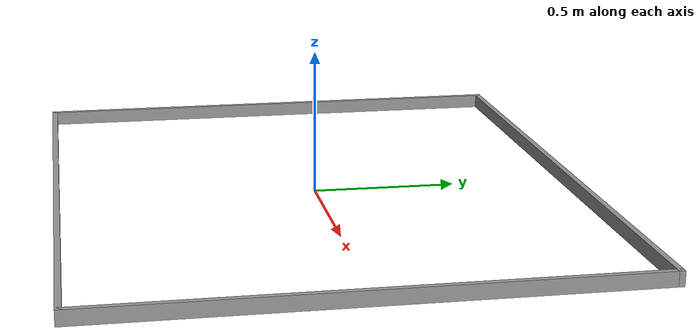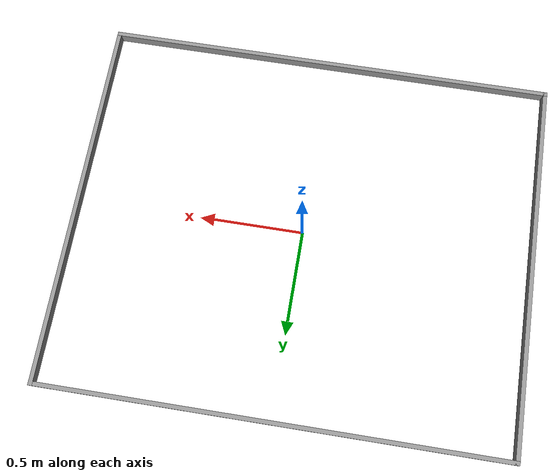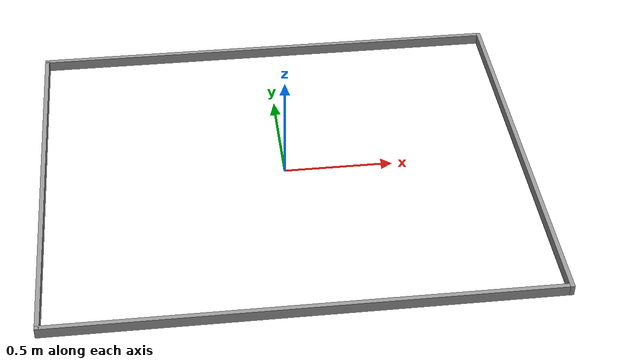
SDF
<?xml version='1.0'?>
<sdf version='1.6'>
  <model name='vsss_field_no_court'>
    <pose frame=''>0 0 0 0 -0 0</pose>
    <link name='Wall_3'>
      <collision name='Wall_3_Collision'>
        <geometry>
          <box>
            <size>1.82 0.02 0.05</size>
          </box>
        </geometry>
        <pose frame=''>0 0 0.025 0 -0 0</pose>
      </collision>
      <visual name='Wall_3_Visual'>
        <pose frame=''>0 0 0.025 0 -0 0</pose>
        <geometry>
          <box>
            <size>1.82 0.02 0.05</size>
          </box>
        </geometry>
        <material>
          <script>
            <uri>file://media/materials/scripts/gazebo.material</uri>
            <name>Gazebo/Grey</name>
          </script>
          <ambient>1 1 1 1</ambient>
        </material>
        <meta>
          <layer>0</layer>
        </meta>
      </visual>
      <pose frame=''>-1.1 0 0 0 -0 -1.5708</pose>
    </link>
    <link name='Wall_4'>
      <collision name='Wall_4_Collision'>
        <geometry>
          <box>
            <size>2.22 0.02 0.05</size>
          </box>
        </geometry>
        <pose frame=''>0 0 0.025 0 -0 0</pose>
      </collision>
      <visual name='Wall_4_Visual'>
        <pose frame=''>0 0 0.025 0 -0 0</pose>
        <geometry>
          <box>
            <size>2.22 0.02 0.05</size>
          </box>
        </geometry>
        <material>
          <script>
            <uri>file://media/materials/scripts/gazebo.material</uri>
            <name>Gazebo/Grey</name>
          </script>
          <ambient>1 1 1 1</ambient>
        </material>
        <meta>
          <layer>0</layer>
        </meta>
      </visual>
      <pose frame=''>0 -0.9 0 0 -0 0</pose>
    </link>
    <link name='Wall_5'>
      <collision name='Wall_5_Collision'>
        <geometry>
          <box>
            <size>1.82 0.02 0.05</size>
          </box>
        </geometry>
        <pose frame=''>0 0 0.025 0 -0 0</pose>
      </collision>
      <visual name='Wall_5_Visual'>
        <pose frame=''>0 0 0.025 0 -0 0</pose>
        <geometry>
          <box>
            <size>1.82 0.02 0.05</size>
          </box>
        </geometry>
        <material>
          <script>
            <uri>file://media/materials/scripts/gazebo.material</uri>
            <name>Gazebo/Grey</name>
          </script>
          <ambient>1 1 1 1</ambient>
        </material>
        <meta>
          <layer>0</layer>
        </meta>
      </visual>
      <pose frame=''>1.1 0 0 0 -0 1.5708</pose>
    </link>
    <link name='Wall_6'>
      <collision name='Wall_6_Collision'>
        <geometry>
          <box>
            <size>2.22 0.02 0.05</size>
          </box>
        </geometry>
        <pose frame=''>0 0 0.025 0 -0 0</pose>
      </collision>
      <visual name='Wall_6_Visual'>
        <pose frame=''>0 0 0.025 0 -0 0</pose>
        <geometry>
          <box>
            <size>2.22 0.02 0.05</size>
          </box>
        </geometry>
        <material>
          <script>
            <uri>file://media/materials/scripts/gazebo.material</uri>
            <name>Gazebo/Grey</name>
          </script>
          <ambient>1 1 1 1</ambient>
        </material>
        <meta>
          <layer>0</layer>
        </meta>
      </visual>
      <pose frame=''>0 0.9 0 0 -0 3.14159</pose>
    </link>
    <static>1</static>
  </model>
</sdf>
